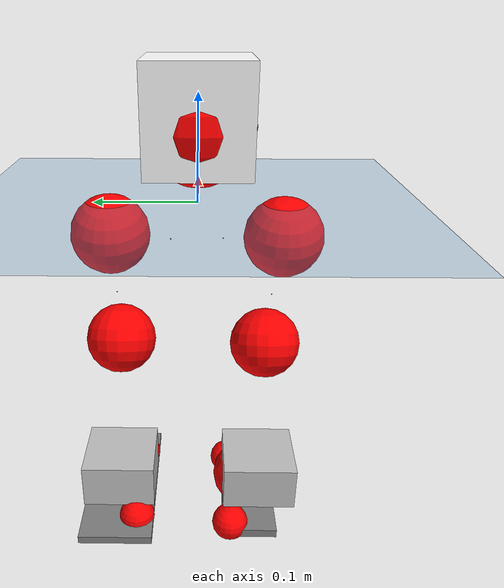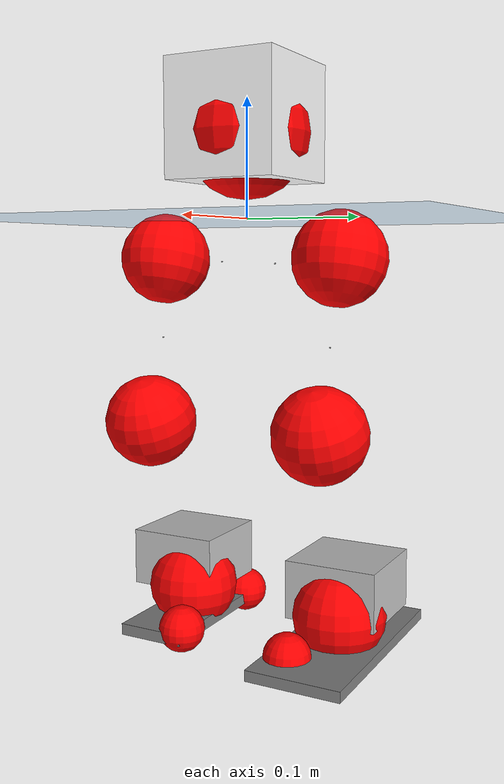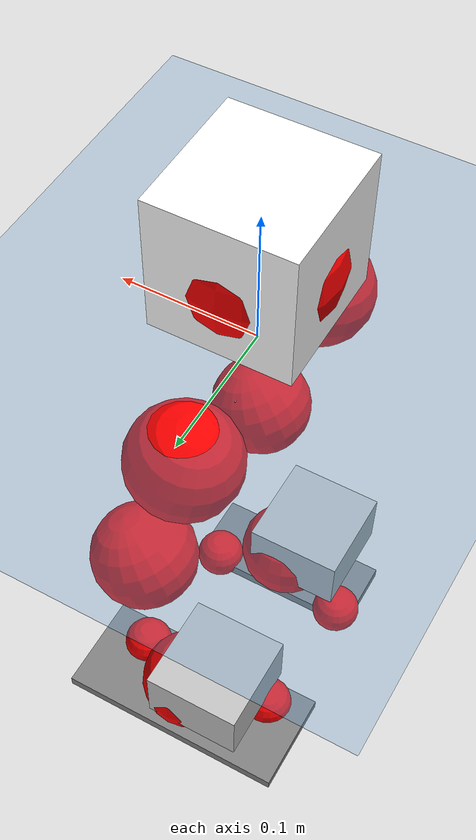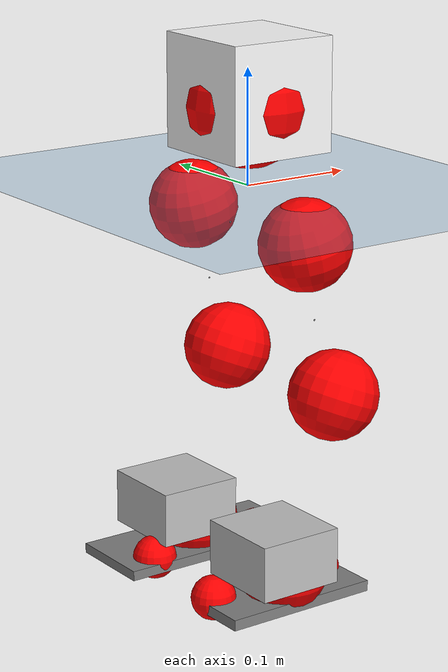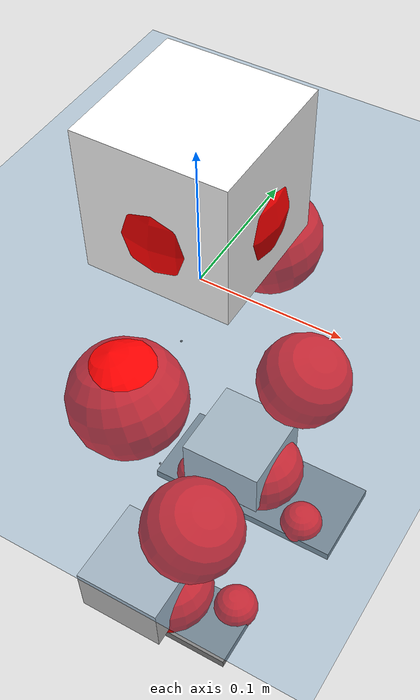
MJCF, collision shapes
<mujoco model="pi_12dof_release_v1">
  <compiler angle="radian" assetdir="assets" balanceinertia="true" inertiafromgeom="false"/>

  <option timestep="0.005" density="1.2" viscosity="2e-05"/>

  <size nkey="1"/>

  <visual>
    <quality shadowsize="8192"/>
    <map shadowclip="0.5"/>
  </visual>

  <default>
    <default class="/">
      <joint armature="0.01" damping="0.01" frictionloss="0.01"/>
      <geom contype="0" conaffinity="0" group="1" solref="-1000 -80"/>
      <site size="0.01 0.005 0.005" group="5"/>
      <general forcelimited="true" biastype="affine" gainprm="20" biasprm="0 -20 -0.5"/>
      <default class="foot">
        <geom size="0.0845 0.036 0.005" type="box" condim="6" group="4" priority="1" friction="0.9 0.2 0.2" solimp="0.015 1 0.005"/>
      </default>
      <default class="reward_collision_sphere">
        <geom group="5" rgba="1 0 0 1"/>
      </default>
    </default>
  </default>

  <asset>
    <texture type="skybox" colorspace="auto" name="//unnamed_texture_0" builtin="gradient" rgb1="0.95 0.95 0.95" rgb2="0.95 0.95 0.95" width="100" height="600"/>
    <texture type="2d" colorspace="auto" name="texplane" builtin="checker" rgb1="0.345 0.575 0.748" rgb2="0.345 0.575 0.748" markrgb="1 1 1" width="512" height="512"/>
    <material name="MatPlane" class="/" texture="texplane" texuniform="true" texrepeat="2 2" specular="0.9"/>
    <mesh name="baselink_1" class="/" file="baselink_1.STL"/>
    <mesh name="r_hip_pitch_link" class="/" file="r_hip_pitch_link.STL"/>
    <mesh name="r_hip_roll_link" class="/" file="r_hip_roll_link.STL"/>
    <mesh name="r_thigh_link" class="/" file="r_thigh_link.STL"/>
    <mesh name="r_calf_link" class="/" file="r_calf_link.STL"/>
    <mesh name="r_ankle_pitch_link" class="/" file="r_ankle_pitch_link.STL"/>
    <mesh name="r_ankle_roll_link" class="/" file="r_ankle_roll_link.STL"/>
    <mesh name="l_hip_pitch_link" class="/" file="l_hip_pitch_link.STL"/>
    <mesh name="l_hip_roll_link" class="/" file="l_hip_roll_link.STL"/>
    <mesh name="l_thigh_link" class="/" file="l_thigh_link.STL"/>
    <mesh name="l_calf_link" class="/" file="l_calf_link.STL"/>
    <mesh name="l_ankle_pitch_link" class="/" file="l_ankle_pitch_link.STL"/>
    <mesh name="l_ankle_roll_link" class="/" file="l_ankle_roll_link.STL"/>
  </asset>

  <worldbody>
    <geom name="floor" class="/" size="100 100 0.125" type="plane" group="0" material="MatPlane"/>
    <light name="toplight_shadow" class="/" pos="0 0 5" dir="0.0990148 0.0990148 -0.990148" type="directional" ambient="0.04 0.04 0.04" diffuse="0.55 0.55 0.55" specular="0.12 0.12 0.12"/>
    <light name="toplight_fill" class="/" pos="0 0 5" dir="0.0990148 0.0990148 -0.990148" type="directional" castshadow="false" ambient="0.04 0.04 0.04" diffuse="0.3 0.3 0.3" specular="0.08 0.08 0.08"/>
    <body name="trunk" pos="0.000676938 -0.000323065 -0.00254825" quat="1 0.0001103 -8.3472e-05 -1.51205e-05">
      <inertial pos="0.00104188 0.00336539 0.0417544" quat="0.699848 0.00851427 0.00983099 0.714174" mass="2.09719" diaginertia="0.00418142 0.0136463 0.00497977"/>
      <joint name="//unnamed_joint_0" type="free"/>
      <geom name="//unnamed_geom_1" class="/" type="mesh" density="0" rgba="1 1 1 1" mesh="baselink_1"/>
      <geom name="//unnamed_geom_2" class="/" size="0.0489566 0.0489566 0.0489566" pos="0 0 0.0824862" type="box" rgba="1 1 1 1"/>
      <geom name="//unnamed_geom_3" class="reward_collision_sphere" size="0.0538523" pos="0 0 0.0721754"/>
      <site name="imu" class="/" pos="-0.00697305 0.00271651 0.00264909" size="0.00979133"/>
      <camera name="track" class="/" pos="0 -2.15482 0" quat="0.707107 0.707107 0 0" mode="trackcom"/>
      <camera name="ego_camera" class="/" pos="0.0621681 0 0.185594" quat="-0.5 -0.5 0.5 0.5"/>
      <body name="r_hip_pitch_link" pos="-0.000865519 -0.024559 -0.0329191" quat="0.992124 0.000264985 -0.125263 0.00024745">
        <inertial pos="0.000323685 -0.0585508 0.00152005" quat="-0.0365925 0.702792 -0.0453505 0.709004" mass="0.356461" diaginertia="4.33838e-05 0.00014327 9.94065e-05"/>
        <joint name="r_hip_pitch_joint" class="/" pos="0 0 0" axis="-0.0153926 -0.999867 0.00546179" stiffness="0.0113065" range="-1.73305 1.2723" armature="0.00928478" damping="0" frictionloss="0.00832686"/>
        <geom name="//unnamed_geom_4" class="/" type="mesh" density="0" rgba="0.75294 0.75294 0.75294 1" mesh="r_hip_pitch_link"/>
        <geom name="//unnamed_geom_5" class="/" size="0.000489566 0.000489566 0.000489566" type="box" rgba="0.75294 0.75294 0.75294 1"/>
        <body name="r_hip_roll_link" pos="-0.00180461 -0.0588006 0.00286032" quat="0.999998 -1.97684e-05 -0.00184353 0.00112668">
          <inertial pos="0.00211568 -0.00551265 -0.0674791" quat="0.706618 -0.0794701 -0.0934863 0.696876" mass="0.367399" diaginertia="0.000132867 0.00038124 0.000147501"/>
          <joint name="r_hip_roll_joint" class="/" pos="0 0 0" axis="-0.999974 -0.000851033 0.00719587" range="-0.134592 0.493201" armature="0.00929973" damping="0.000880741" frictionloss="0.00912905"/>
          <geom name="//unnamed_geom_6" class="/" type="mesh" density="0" rgba="0.75294 0.75294 0.75294 1" mesh="r_hip_roll_link"/>
          <geom name="//unnamed_geom_7" class="/" size="0.000489566 0.000489566 0.000489566" type="box" rgba="0.75294 0.75294 0.75294 1"/>
          <geom name="//unnamed_geom_8" class="reward_collision_sphere" size="0.0391653"/>
          <body name="r_thigh_link" pos="-0.00244879 0.00663978 -0.0697613" quat="0.999999 0.000847935 0.00037536 -0.000769662">
            <inertial pos="0.0027303 0.000923512 -0.0480402" quat="0.731062 0.682265 -0.00246143 0.00748264" mass="0.108154" diaginertia="4.86548e-05 0.000131427 6.57715e-05"/>
            <joint name="r_thigh_joint" class="/" pos="0 0 0" axis="-0.00865437 0.00610668 -0.999944" stiffness="0.0117209" range="-0.22921 0.664453" armature="0.00902134" damping="0.0257482" frictionloss="0.00812168"/>
            <geom name="//unnamed_geom_9" class="/" type="mesh" density="0" rgba="0.75294 0.75294 0.75294 1" mesh="r_thigh_link"/>
            <geom name="//unnamed_geom_10" class="/" size="0.000489566 0.000489566 0.000489566" type="box" rgba="0.75294 0.75294 0.75294 1"/>
            <body name="r_calf_link" pos="0.00403106 0.00129819 -0.0735986" quat="0.947826 0.00103868 0.318785 0.000300819">
              <inertial pos="-0.00347475 0.00141583 -0.0735259" quat="0.99987 -0.00057914 0.0078278 0.0140829" mass="0.736517" diaginertia="0.00136939 0.00507611 0.000208174"/>
              <joint name="r_calf_joint" class="/" pos="0 0 0" axis="-0.00673115 -0.999782 -0.0197722" stiffness="0.00319226" range="-1.67977 0.602571" armature="0.00988381" damping="0" frictionloss="0.00849806"/>
              <geom name="//unnamed_geom_11" class="/" type="mesh" density="0" rgba="0.75294 0.75294 0.75294 1" mesh="r_calf_link"/>
              <geom name="//unnamed_geom_12" class="/" size="0.000489566 0.000489566 0.000489566" type="box" rgba="0.75294 0.75294 0.75294 1"/>
              <geom name="//unnamed_geom_13" class="reward_collision_sphere" size="0.0391653"/>
              <body name="r_ankle_pitch_link" pos="-0.00232686 0.00676844 -0.142369" quat="0.980037 0.000118054 -0.198813 2.45022e-05">
                <inertial pos="0.00526641 0.00329482 -0.00303182" quat="0.0137676 0.706877 -0.00583507 0.707179" mass="0.170872" diaginertia="0.000120207 0.000322526 0.000139875"/>
                <joint name="r_ankle_pitch_joint" class="/" pos="0 0 0" axis="-0.00612713 -0.999912 -0.0117404" range="-1.30305 0.558637" armature="0.00908037" damping="0.0124107" frictionloss="0.00869165"/>
                <geom name="//unnamed_geom_14" class="/" type="mesh" density="0" rgba="0.75294 0.75294 0.75294 1" mesh="r_ankle_pitch_link"/>
                <geom name="//unnamed_geom_15" class="/" size="0.0381862 0.0391653 0.0244783" type="box" rgba="0.75294 0.75294 0.75294 1"/>
                <body name="r_ankle_roll_link" pos="0.0589308 0.0098508 -0.00250575" quat="0.999999 0.000131178 0.000241231 0.000996672">
                  <inertial pos="-0.0207231 0.000713876 -0.0141343" quat="0.557956 0.42327 0.434332 0.566466" mass="0.461104" diaginertia="0.000408217 0.00142004 0.000309797"/>
                  <joint name="r_ankle_roll_joint" class="/" pos="0 0 0" axis="-0.999672 -0.0243216 -0.00798069" range="-0.236114 0.13196" armature="0.00919106" damping="0.00793623" frictionloss="0.0110337"/>
                  <geom name="//unnamed_geom_16" class="/" type="mesh" density="0" rgba="0.75294 0.75294 0.75294 1" mesh="r_ankle_roll_link"/>
                  <geom name="//unnamed_geom_17" class="/" type="mesh" rgba="0.75294 0.75294 0.75294 1" mesh="r_ankle_roll_link"/>
                  <geom name="right_foot" class="foot" size="0.0710865 0.02908 0.00479789" pos="-0.0422743 0 -0.0453674"/>
                  <geom name="//unnamed_geom_19" class="reward_collision_sphere" size="0.0391653" pos="-0.0414454 0 -0.0206215"/>
                  <geom name="//unnamed_geom_20" class="reward_collision_sphere" size="0.0195827" pos="0.0124336 0.0215482 -0.0412431"/>
                  <geom name="//unnamed_geom_21" class="reward_collision_sphere" size="0.0195827" pos="-0.099469 0.0215482 -0.0412431"/>
                  <site name="right_foot" class="foot" pos="-0.0422743 0 -0.0453674" size="0.00979133"/>
                </body>
              </body>
            </body>
          </body>
        </body>
      </body>
      <body name="l_hip_pitch_link" pos="0.000210169 0.0271576 -0.0344058" quat="0.992213 -4.80937e-05 -0.124556 8.88391e-05">
        <inertial pos="0.00343754 0.0553402 0.000787377" quat="-0.0309421 0.708083 0.0198896 0.70517" mass="0.374845" diaginertia="4.733e-05 0.000145142 0.000115698"/>
        <joint name="l_hip_pitch_joint" class="/" pos="0 0 0" axis="0.00916784 0.999952 0.00357875" range="-1.20532 1.71605" armature="0.00975822" damping="0.0156819" frictionloss="0.0102139"/>
        <geom name="//unnamed_geom_22" class="/" type="mesh" density="0" rgba="0.75294 0.75294 0.75294 1" mesh="l_hip_pitch_link"/>
        <geom name="//unnamed_geom_23" class="/" size="0.000489566 0.000489566 0.000489566" type="box" rgba="0.75294 0.75294 0.75294 1"/>
        <body name="l_hip_roll_link" pos="0.00355219 0.0591534 0.00347891" quat="0.999999 0.00134418 0.000352027 -0.00051547">
          <inertial pos="0.00359104 -0.00457342 -0.0610721" quat="0.701325 -0.0760626 -0.0785312 0.704408" mass="0.379863" diaginertia="0.000127664 0.000407053 0.000145004"/>
          <joint name="l_hip_roll_joint" class="/" pos="0 0 0" axis="-1 -0.000425672 0.000771106" stiffness="0.00771147" range="-0.493386 0.154377" armature="0.00794349" damping="0" frictionloss="0.0091811"/>
          <geom name="//unnamed_geom_24" class="/" type="mesh" density="0" rgba="0.75294 0.75294 0.75294 1" mesh="l_hip_roll_link"/>
          <geom name="//unnamed_geom_25" class="/" size="0.000489566 0.000489566 0.000489566" type="box" rgba="0.75294 0.75294 0.75294 1"/>
          <geom name="//unnamed_geom_26" class="reward_collision_sphere" size="0.0391653"/>
          <body name="l_thigh_link" pos="-0.00169439 -0.00095441 -0.0715834" quat="1 0.000491884 -0.00042254 6.40472e-05">
            <inertial pos="0.000295907 -0.002572 -0.0521264" quat="0.674771 0.738019 0.00202807 0.00297475" mass="0.105205" diaginertia="5.03215e-05 0.000141744 7.00269e-05"/>
            <joint name="l_thigh_joint" class="/" pos="0 0 0" axis="-0.00152001 0.00337012 -0.999993" range="-0.556834 0.337785" armature="0.00907648" damping="0.00960865" frictionloss="0.0110176"/>
            <geom name="//unnamed_geom_27" class="/" type="mesh" density="0" rgba="0.75294 0.75294 0.75294 1" mesh="l_thigh_link"/>
            <geom name="//unnamed_geom_28" class="/" size="0.000489566 0.000489566 0.000489566" type="box" rgba="0.75294 0.75294 0.75294 1"/>
            <body name="l_calf_link" pos="0.00353404 0.00117075 -0.0699881" quat="0.948118 7.2534e-06 0.317913 0.0017958">
              <inertial pos="0.00148232 0.000659912 -0.076827" quat="0.999998 0.000360664 -0.000488066 0.00165989" mass="0.745984" diaginertia="0.00135441 0.00513443 0.000187195"/>
              <joint name="l_calf_joint" class="/" pos="0 0 0" axis="0.00443749 0.999989 -0.00130229" stiffness="0.0200396" range="-0.683658 1.60721" armature="0.00885371" damping="0.0034645" frictionloss="0.0110561"/>
              <geom name="//unnamed_geom_29" class="/" type="mesh" density="0" rgba="0.75294 0.75294 0.75294 1" mesh="l_calf_link"/>
              <geom name="//unnamed_geom_30" class="/" size="0.000489566 0.000489566 0.000489566" type="box" rgba="0.75294 0.75294 0.75294 1"/>
              <geom name="//unnamed_geom_31" class="reward_collision_sphere" size="0.0391653"/>
              <body name="l_ankle_pitch_link" pos="-6.96887e-05 -0.000430226 -0.147341" quat="0.980236 0.000576862 -0.197831 2.25365e-05">
                <inertial pos="0.0030605 -0.000508271 -0.00259817" quat="0.0064331 0.704986 0.00704343 0.709157" mass="0.175827" diaginertia="0.000121814 0.0003215 0.000143241"/>
                <joint name="l_ankle_pitch_joint" class="/" pos="0 0 0" axis="-0.00550639 0.99998 -0.00309534" range="-0.562656 1.31475" armature="0.0108329" damping="0" frictionloss="0.0094236"/>
                <geom name="//unnamed_geom_32" class="/" type="mesh" density="0" rgba="0.75294 0.75294 0.75294 1" mesh="l_ankle_pitch_link"/>
                <geom name="//unnamed_geom_33" class="/" size="0.0381862 0.0391653 0.0244783" type="box" rgba="0.75294 0.75294 0.75294 1"/>
                <body name="l_ankle_roll_link" pos="0.062726 0.00215772 0.000901898" quat="1 0.000402455 -0.000216129 -2.2107e-05">
                  <inertial pos="-0.0216089 0.000599656 -0.0144332" quat="0.559938 0.430361 0.433976 0.559395" mass="0.488799" diaginertia="0.000457035 0.00152919 0.000324566"/>
                  <joint name="l_ankle_roll_joint" class="/" pos="0 0 0" axis="-1 0.000132079 -0.000249293" range="-0.229362 0.138618" armature="0.00886047" damping="0.0190536" frictionloss="0.00862676"/>
                  <geom name="//unnamed_geom_34" class="/" type="mesh" density="0" rgba="0.75294 0.75294 0.75294 1" mesh="l_ankle_roll_link"/>
                  <geom name="//unnamed_geom_35" class="/" type="mesh" rgba="0.75294 0.75294 0.75294 1" mesh="l_ankle_roll_link"/>
                  <geom name="left_foot" class="foot" size="0.0916945 0.0398134 0.0044228" pos="-0.0422743 0 -0.0453674"/>
                  <geom name="//unnamed_geom_37" class="reward_collision_sphere" size="0.0391653" pos="-0.0414454 0 -0.0206215"/>
                  <geom name="//unnamed_geom_38" class="reward_collision_sphere" size="0.0195827" pos="0.0124336 -0.0215482 -0.0412431"/>
                  <geom name="//unnamed_geom_39" class="reward_collision_sphere" size="0.0195827" pos="-0.099469 -0.0215482 -0.0412431"/>
                  <site name="left_foot" class="foot" pos="-0.0422743 0 -0.0453674" size="0.00979133"/>
                </body>
              </body>
            </body>
          </body>
        </body>
      </body>
    </body>
  </worldbody>

  <contact>
    <pair class="/" geom1="floor" geom2="right_foot" name="//unnamed_contact_1"/>
    <pair class="/" geom1="floor" geom2="left_foot" name="//unnamed_contact_0"/>
  </contact>

  <actuator>
    <general name="r_hip_pitch_joint" class="/" joint="r_hip_pitch_joint" forcerange="-18.9617 18.9617" gainprm="18.7544" biasprm="0 -18.7544 -0.543789"/>
    <general name="r_hip_roll_joint" class="/" joint="r_hip_roll_joint" forcerange="-17.395 17.395" gainprm="18.7544" biasprm="0 -18.7544 -0.543789"/>
    <general name="r_thigh_joint" class="/" joint="r_thigh_joint" forcerange="-20.3244 20.3244" gainprm="18.7544" biasprm="0 -18.7544 -0.543789"/>
    <general name="r_calf_joint" class="/" joint="r_calf_joint" forcerange="-21.1318 21.1318" gainprm="18.7544" biasprm="0 -18.7544 -0.543789"/>
    <general name="r_ankle_pitch_joint" class="/" joint="r_ankle_pitch_joint" forcerange="-20.5913 20.5913" gainprm="18.7544" biasprm="0 -18.7544 -0.543789"/>
    <general name="r_ankle_roll_joint" class="/" joint="r_ankle_roll_joint" forcerange="-20.008 20.008" gainprm="18.7544" biasprm="0 -18.7544 -0.543789"/>
    <general name="l_hip_pitch_joint" class="/" joint="l_hip_pitch_joint" forcerange="-22.1069 22.1069" gainprm="18.7544" biasprm="0 -18.7544 -0.543789"/>
    <general name="l_hip_roll_joint" class="/" joint="l_hip_roll_joint" forcerange="-21.1825 21.1825" gainprm="18.7544" biasprm="0 -18.7544 -0.543789"/>
    <general name="l_thigh_joint" class="/" joint="l_thigh_joint" forcerange="-20.7007 20.7007" gainprm="18.7544" biasprm="0 -18.7544 -0.543789"/>
    <general name="l_calf_joint" class="/" joint="l_calf_joint" forcerange="-19.3522 19.3522" gainprm="18.7544" biasprm="0 -18.7544 -0.543789"/>
    <general name="l_ankle_pitch_joint" class="/" joint="l_ankle_pitch_joint" forcerange="-20.5047 20.5047" gainprm="18.7544" biasprm="0 -18.7544 -0.543789"/>
    <general name="l_ankle_roll_joint" class="/" joint="l_ankle_roll_joint" forcerange="-20.77 20.77" gainprm="18.7544" biasprm="0 -18.7544 -0.543789"/>
  </actuator>

  <sensor>
    <gyro site="imu" name="imu_angular_velocity"/>
    <velocimeter site="imu" name="imu_linear_velocity"/>
    <framelinvel objtype="site" objname="left_foot" name="left_foot_global_linear_velocity"/>
    <framelinvel objtype="site" objname="right_foot" name="right_foot_global_linear_velocity"/>
  </sensor>

  <keyframe>
    <key name="home" qpos="0 0 0.291 1 0 0 0 0.4 0 0 -0.8 0.4 0 -0.4 0 0 0.8 -0.4 0"/>
  </keyframe>
</mujoco>
